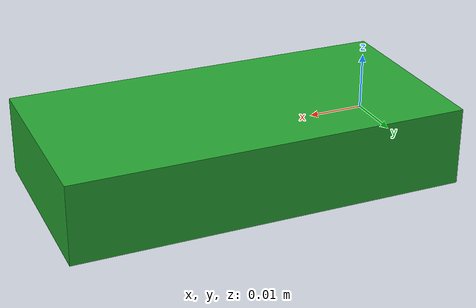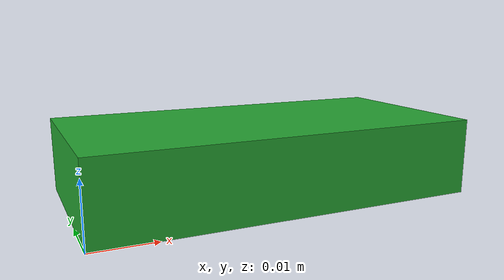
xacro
<?xml version='1.0'?>
<robot xmlns:xacro="http://www.ros.org/wiki/xacro" name="block">
  <xacro:property name="body_l" value="0.0635"/>
  <xacro:property name="body_w" value="0.03175"/>
  <xacro:property name="body_h" value="0.0127"/>

  <xacro:property name="color" default="Green" />
  <link name="${color}_block">
    <inertial>
      <origin xyz="${body_l/2} ${body_w/2} ${body_h/2}" />
      <mass value="0.5" />
   <inertia  ixx="0.5" ixy="0.0"  ixz="0.0"  iyy="0.5"  iyz="0.0"  izz="0.5" />
    </inertial>
    <visual>
      <origin xyz="${body_l/2} ${body_w/2} ${body_h/2}" />
      <geometry>
        <box size="${body_l} ${body_w} ${body_h}" />
      </geometry>
    </visual>
    <collision>
      <origin xyz="${body_l/2} ${body_w/2} ${body_h/2}" />
      <geometry>
        <box size="${body_l} ${body_w} ${body_h}" />
      </geometry>
    </collision>
  </link>

  <gazebo reference="${color}_block">
     <material>Gazebo/${color}</material>
     <mu1>1000</mu1>
     <mu2>1000</mu2>
  </gazebo>
</robot>
